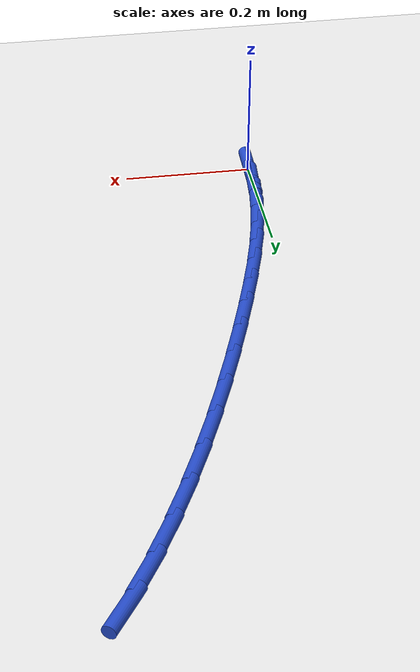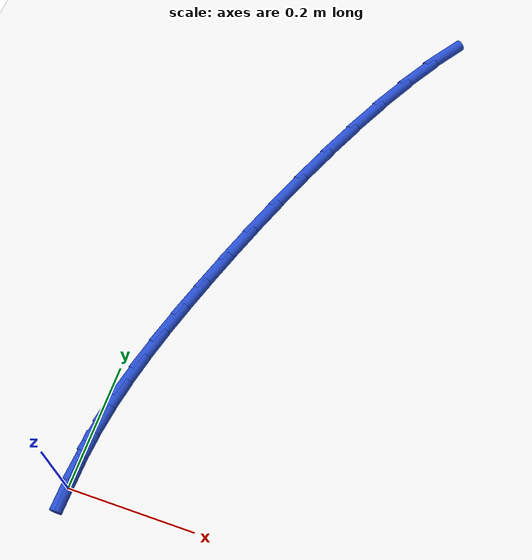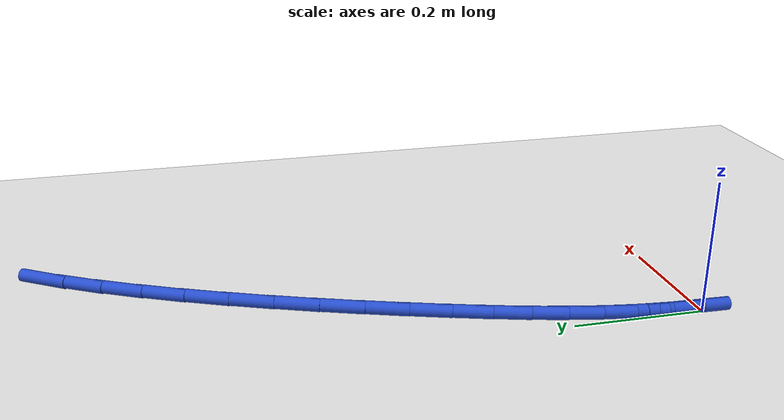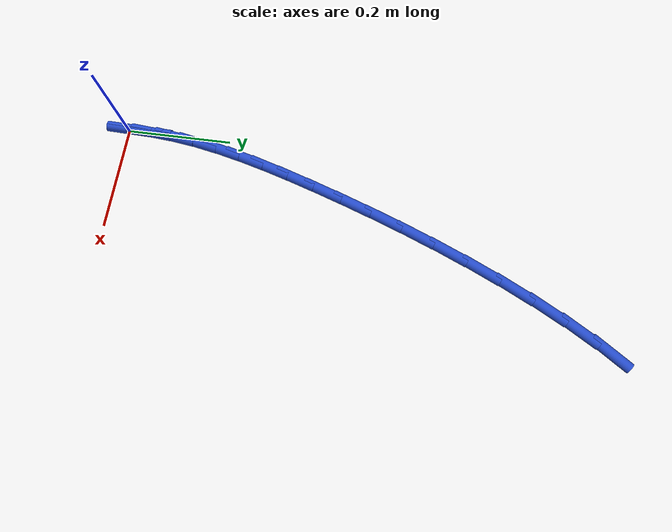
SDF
<sdf version="1.6">
 <world name="default">
  <model name="ground_plane">
   <static>1</static>
   <link name="link">
    <collision name="collision">
     <geometry><plane><normal>0 0 1</normal><size>100 100</size></plane></geometry>
     <surface><friction><ode><mu>100</mu><mu2>50</mu2></ode></friction></surface>
    </collision>
    <visual name="visual">
     <cast_shadows>0</cast_shadows>
     <geometry><plane><normal>0 0 1</normal><size>100 100</size></plane></geometry>
     <material>
      <script><uri>file://media/materials/scripts/gazebo.material</uri><name>Gazebo/WhiteGlow</name></script>
     </material>
    </visual>
   </link>
  </model>
  <model name="line">
   <link name="link_0">
    <pose>-6.938893903907228e-18 2.0816681711721685e-17 0.01 0 1.57 1.540561443333834</pose>
    <collision name="collision">
     <geometry><cylinder><radius>0.01</radius><length>0.08</length></cylinder></geometry>
    </collision>
    <visual name="visual">
     <material>
      <script><name>Gazebo/Blue</name><uri>file://media/materials/scripts/gazebo.material</uri></script>
     </material>
     <geometry><cylinder><radius>0.01</radius><length>0.08</length></cylinder></geometry>
    </visual>
   </link>
   <link name="link_1">
    <pose>0.0014410302492590553 0.04764665685887658 0.01 0 1.57 1.482696563486707</pose>
    <collision name="collision">
     <geometry><cylinder><radius>0.01</radius><length>0.08</length></cylinder></geometry>
    </collision>
    <visual name="visual">
     <material>
      <script><name>Gazebo/Blue</name><uri>file://media/materials/scripts/gazebo.material</uri></script>
     </material>
     <geometry><cylinder><radius>0.01</radius><length>0.08</length></cylinder></geometry>
    </visual>
   </link>
   <link name="link_2">
    <pose>0.005607147945011203 0.09481288549213578 0.01 0 1.57 1.4283676075916114</pose>
    <collision name="collision">
     <geometry><cylinder><radius>0.01</radius><length>0.08</length></cylinder></geometry>
    </collision>
    <visual name="visual">
     <material>
      <script><name>Gazebo/Blue</name><uri>file://media/materials/scripts/gazebo.material</uri></script>
     </material>
     <geometry><cylinder><radius>0.01</radius><length>0.08</length></cylinder></geometry>
    </visual>
   </link>
   <link name="link_3">
    <pose>0.012379348391943256 0.14203892915551808 0.01 0 1.57 1.3795591928098352</pose>
    <collision name="collision">
     <geometry><cylinder><radius>0.01</radius><length>0.08</length></cylinder></geometry>
    </collision>
    <visual name="visual">
     <material>
      <script><name>Gazebo/Blue</name><uri>file://media/materials/scripts/gazebo.material</uri></script>
     </material>
     <geometry><cylinder><radius>0.01</radius><length>0.08</length></cylinder></geometry>
    </visual>
   </link>
   <link name="link_4">
    <pose>0.021638626894742018 0.1898650311047639 0.01 0 1.57 1.3376584564360243</pose>
    <collision name="collision">
     <geometry><cylinder><radius>0.01</radius><length>0.08</length></cylinder></geometry>
    </collision>
    <visual name="visual">
     <material>
      <script><name>Gazebo/Blue</name><uri>file://media/materials/scripts/gazebo.material</uri></script>
     </material>
     <geometry><cylinder><radius>0.01</radius><length>0.08</length></cylinder></geometry>
    </visual>
   </link>
   <link name="link_5">
    <pose>0.03326597875809431 0.23883143459561357 0.01 0 1.57 1.3033755333176595</pose>
    <collision name="collision">
     <geometry><cylinder><radius>0.01</radius><length>0.08</length></cylinder></geometry>
    </collision>
    <visual name="visual">
     <material>
      <script><name>Gazebo/Blue</name><uri>file://media/materials/scripts/gazebo.material</uri></script>
     </material>
     <geometry><cylinder><radius>0.01</radius><length>0.08</length></cylinder></geometry>
    </visual>
   </link>
   <link name="link_6">
    <pose>0.04714239928668697 0.2894783828838076 0.01 0 1.57 1.2768050414219354</pose>
    <collision name="collision">
     <geometry><cylinder><radius>0.01</radius><length>0.08</length></cylinder></geometry>
    </collision>
    <visual name="visual">
     <material>
      <script><name>Gazebo/Blue</name><uri>file://media/materials/scripts/gazebo.material</uri></script>
     </material>
     <geometry><cylinder><radius>0.01</radius><length>0.08</length></cylinder></geometry>
    </visual>
   </link>
   <link name="link_7">
    <pose>0.06314888378520678 0.3423461192250864 0.01 0 1.57 1.2575447428191742</pose>
    <collision name="collision">
     <geometry><cylinder><radius>0.01</radius><length>0.08</length></cylinder></geometry>
    </collision>
    <visual name="visual">
     <material>
      <script><name>Gazebo/Blue</name><uri>file://media/materials/scripts/gazebo.material</uri></script>
     </material>
     <geometry><cylinder><radius>0.01</radius><length>0.08</length></cylinder></geometry>
    </visual>
   </link>
   <link name="link_8">
    <pose>0.08116656456038826 0.39797058314323697 0.01 0 1.57 1.2424582086692424</pose>
    <collision name="collision">
     <geometry><cylinder><radius>0.01</radius><length>0.08</length></cylinder></geometry>
    </collision>
    <visual name="visual">
     <material>
      <script><name>Gazebo/Blue</name><uri>file://media/materials/scripts/gazebo.material</uri></script>
     </material>
     <geometry><cylinder><radius>0.01</radius><length>0.08</length></cylinder></geometry>
    </visual>
   </link>
   <link name="link_9">
    <pose>0.10109035269522544 0.4564548727508602 0.01 0 1.57 1.2264654663673669</pose>
    <collision name="collision">
     <geometry><cylinder><radius>0.01</radius><length>0.08</length></cylinder></geometry>
    </collision>
    <visual name="visual">
     <material>
      <script><name>Gazebo/Blue</name><uri>file://media/materials/scripts/gazebo.material</uri></script>
     </material>
     <geometry><cylinder><radius>0.01</radius><length>0.08</length></cylinder></geometry>
    </visual>
   </link>
   <link name="link_10">
    <pose>0.1228405328585811 0.5171050096635283 0.01 0 1.57 1.2086945911875444</pose>
    <collision name="collision">
     <geometry><cylinder><radius>0.01</radius><length>0.08</length></cylinder></geometry>
    </collision>
    <visual name="visual">
     <material>
      <script><name>Gazebo/Blue</name><uri>file://media/materials/scripts/gazebo.material</uri></script>
     </material>
     <geometry><cylinder><radius>0.01</radius><length>0.08</length></cylinder></geometry>
    </visual>
   </link>
   <link name="link_11">
    <pose>0.1463401203233068 0.579141237307107 0.01 0 1.57 1.1887085569846636</pose>
    <collision name="collision">
     <geometry><cylinder><radius>0.01</radius><length>0.08</length></cylinder></geometry>
    </collision>
    <visual name="visual">
     <material>
      <script><name>Gazebo/Blue</name><uri>file://media/materials/scripts/gazebo.material</uri></script>
     </material>
     <geometry><cylinder><radius>0.01</radius><length>0.08</length></cylinder></geometry>
    </visual>
   </link>
   <link name="link_12">
    <pose>0.1715121303622541 0.6417837991074622 0.01 0 1.57 1.1659727087466365</pose>
    <collision name="collision">
     <geometry><cylinder><radius>0.01</radius><length>0.08</length></cylinder></geometry>
    </collision>
    <visual name="visual">
     <material>
      <script><name>Gazebo/Blue</name><uri>file://media/materials/scripts/gazebo.material</uri></script>
     </material>
     <geometry><cylinder><radius>0.01</radius><length>0.08</length></cylinder></geometry>
    </visual>
   </link>
   <link name="link_13">
    <pose>0.19827957824827447 0.704252938490459 0.01 0 1.57 1.1398110968998685</pose>
    <collision name="collision">
     <geometry><cylinder><radius>0.01</radius><length>0.08</length></cylinder></geometry>
    </collision>
    <visual name="visual">
     <material>
      <script><name>Gazebo/Blue</name><uri>file://media/materials/scripts/gazebo.material</uri></script>
     </material>
     <geometry><cylinder><radius>0.01</radius><length>0.08</length></cylinder></geometry>
    </visual>
   </link>
   <link name="link_14">
    <pose>0.22656547925421966 0.7657688988819639 0.01 0 1.57 1.1093476459277243</pose>
    <collision name="collision">
     <geometry><cylinder><radius>0.01</radius><length>0.08</length></cylinder></geometry>
    </collision>
    <visual name="visual">
     <material>
      <script><name>Gazebo/Blue</name><uri>file://media/materials/scripts/gazebo.material</uri></script>
     </material>
     <geometry><cylinder><radius>0.01</radius><length>0.08</length></cylinder></geometry>
    </visual>
   </link>
   <link name="link_15">
    <pose>0.25629284865294105 0.8255519237078421 0.01 0 1.57 1.0734233484225637</pose>
    <collision name="collision">
     <geometry><cylinder><radius>0.01</radius><length>0.08</length></cylinder></geometry>
    </collision>
    <visual name="visual">
     <material>
      <script><name>Gazebo/Blue</name><uri>file://media/materials/scripts/gazebo.material</uri></script>
     </material>
     <geometry><cylinder><radius>0.01</radius><length>0.08</length></cylinder></geometry>
    </visual>
   </link>
   <link name="link_16">
    <pose>0.2873847017172904 0.8828222563939598 0.01 0 1.57 1.0304773418939368</pose>
    <collision name="collision">
     <geometry><cylinder><radius>0.01</radius><length>0.08</length></cylinder></geometry>
    </collision>
    <visual name="visual">
     <material>
      <script><name>Gazebo/Blue</name><uri>file://media/materials/scripts/gazebo.material</uri></script>
     </material>
     <geometry><cylinder><radius>0.01</radius><length>0.08</length></cylinder></geometry>
    </visual>
   </link>
   <link name="link_17">
    <pose>0.3197640537201191 0.9368001403661822 0.01 0 1.57 0.9783757918671593</pose>
    <collision name="collision">
     <geometry><cylinder><radius>0.01</radius><length>0.08</length></cylinder></geometry>
    </collision>
    <visual name="visual">
     <material>
      <script><name>Gazebo/Blue</name><uri>file://media/materials/scripts/gazebo.material</uri></script>
     </material>
     <geometry><cylinder><radius>0.01</radius><length>0.08</length></cylinder></geometry>
    </visual>
   </link>
   <link name="link_160">
    <pose>-2.2551405187698492e-17 2.636779683484747e-16 0.01 0 1.57 1.5396707194347872</pose>
    <collision name="collision">
     <geometry><cylinder><radius>0.01</radius><length>0.08</length></cylinder></geometry>
    </collision>
    <visual name="visual">
     <material>
      <script><name>Gazebo/Blue</name><uri>file://media/materials/scripts/gazebo.material</uri></script>
     </material>
     <geometry><cylinder><radius>0.01</radius><length>0.08</length></cylinder></geometry>
    </visual>
   </link>
   <link name="link_161">
    <pose>0.0014793993726683382 0.04751462600021883 0.01 0 1.57 1.5396707194347878</pose>
    <collision name="collision">
     <geometry><cylinder><radius>0.01</radius><length>0.08</length></cylinder></geometry>
    </collision>
    <visual name="visual">
     <material>
      <script><name>Gazebo/Blue</name><uri>file://media/materials/scripts/gazebo.material</uri></script>
     </material>
     <geometry><cylinder><radius>0.01</radius><length>0.08</length></cylinder></geometry>
    </visual>
   </link>
  </model>
 </world>
</sdf>
